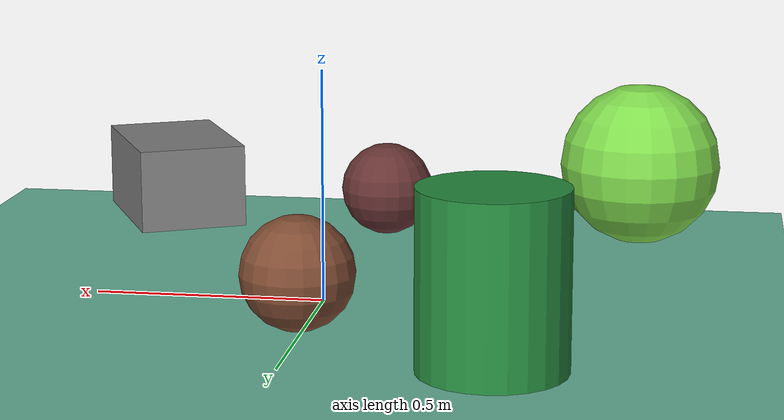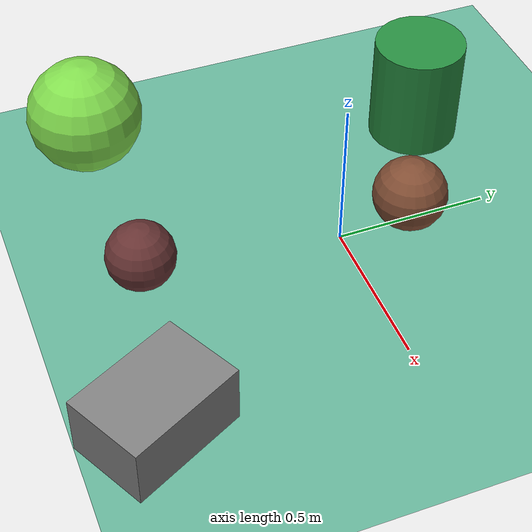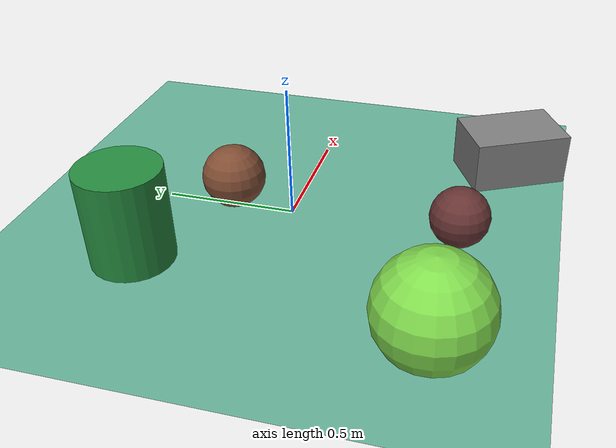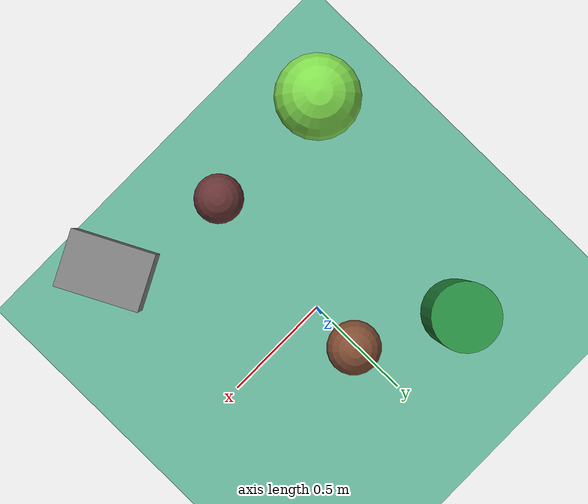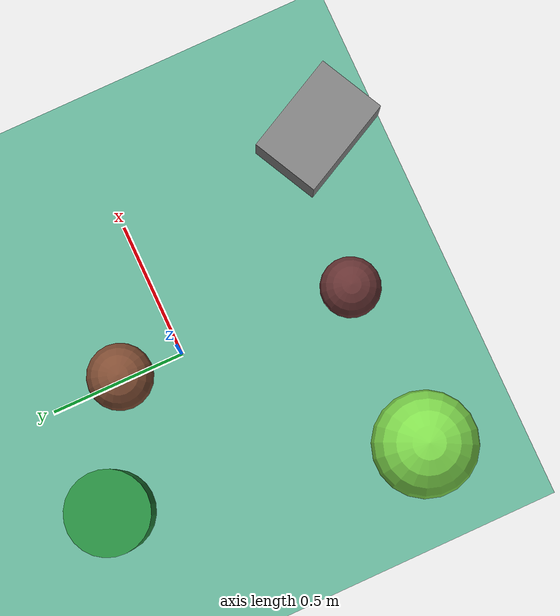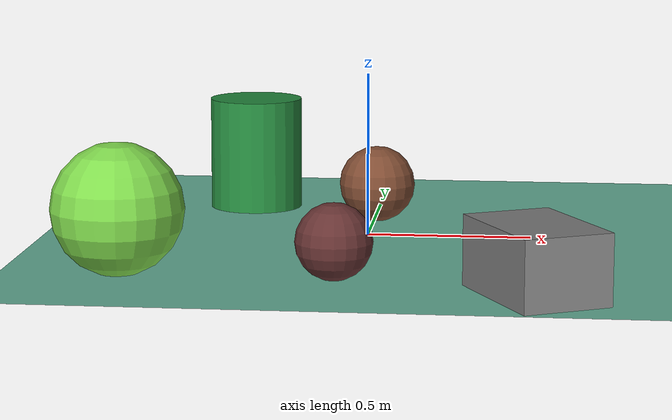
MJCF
<mujoco>
   <asset>
<texture type="skybox" builtin="gradient" rgb1="1.0 0.3 0.2" rgb2="0.6 0.0 0.0" width="500" height="500"/>
<texture name="gradient_0" builtin="gradient" rgb1="0.2 0.8 0.5" rgb2="0.8 0.9 0.1" width="500" height="500"/>
<texture name="checker_1" builtin="checker" rgb1="0.3 0.7 0.3" rgb2="0.0 0.4 0.2" width="500" height="500"/>
<texture name="gradient_2" builtin="gradient" rgb1="0.5 0.2 0.2" rgb2="0.5 0.8 0.8" width="500" height="500"/>
<texture name="flat_3" builtin="flat" rgb1="0.4 0.2 0.2" rgb2="0.4 0.2 0.2"  width="500" height="500"/>
<texture name="gradient_4" builtin="gradient" rgb1="0.1 0.2 0.3" rgb2="0.9 0.4 0.1" width="500" height="500"/><material name="gradient_0_mat" reflectance="0.5954599244040364" texture="gradient_0" texuniform="true"/>
<material name="checker_1_mat" reflectance="0.7467394987965529" texrepeat="9 9" texture="checker_1" texuniform="false" />
<material name="gradient_2_mat" reflectance="0.7395669682504971" texture="gradient_2" texuniform="true"/>
<material name="flat_3_mat" reflectance="0.8492887958507165" texture="flat_3" texuniform="true"/>
<material name="gradient_4_mat" reflectance="0.08423252213244325" texture="gradient_4" texuniform="true"/>
   </asset>

   <worldbody>
     <geom type="plane" size="1 1 0.1" rgba="0.4 0.7 0.6 1" />
<light pos="0.8715174184080874 0.9692521789795785 2" dir="0 0 -1" cutoff="90" diffuse="1 1 1" specular="1 1 1"/>
<light pos="-0.7425534747917566 0.34374655374791097 2" dir="0 0 -1" cutoff="90" diffuse="1 1 1" specular="1 1 1"/>
<geom type="sphere" pos="-0.65 -0.64 0.19" size="0.19 0.19 0.19" material="gradient_0_mat" euler="0 0 46" />
<geom type="cylinder" pos="-0.41 0.45 0.18" size="0.15 0.18 0.18" material="checker_1_mat" euler="0 0 2" />
<geom type="box" pos="0.52 -0.77 0.1" size="0.13 0.19 0.1" material="gradient_2_mat" euler="0 0 27" />
<geom type="sphere" pos="-0.04 -0.64 0.11" size="0.11 0.11 0.11" material="flat_3_mat" euler="0 0 24" />
<geom type="sphere" pos="0.01 0.23 0.12" size="0.12 0.12 0.12" material="gradient_4_mat" euler="0 0 35" /><camera euler="60 0 180" fovy="60" name="camera1" pos="-0.2 -1.5 1"></camera>   </worldbody>
   <visual>
      <headlight diffuse="0.7 0.7 0.7"/>
   </visual>
</mujoco>
